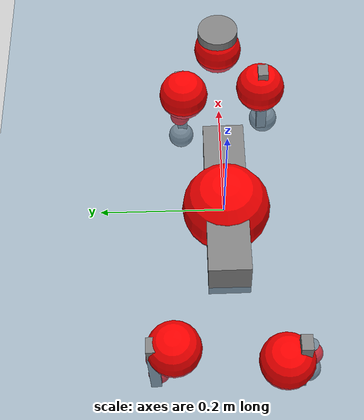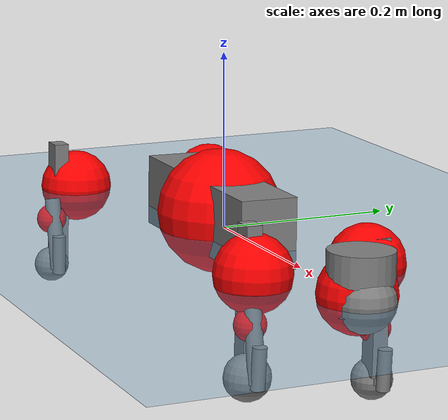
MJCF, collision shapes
<mujoco model="go2">
  <compiler angle="radian" assetdir="assets" balanceinertia="true" inertiafromgeom="false"/>

  <option timestep="0.005" density="1.2" viscosity="2e-05"/>

  <size nkey="1"/>

  <visual>
    <quality shadowsize="8192"/>
    <map shadowclip="0.5"/>
  </visual>

  <default>
    <default class="/">
      <geom contype="0" conaffinity="0" group="1" solref="-1000 -80"/>
      <site size="0.01 0.005 0.005" group="5"/>
      <general forcelimited="true" biastype="affine" gainprm="20" biasprm="0 -20 -0.5"/>
      <default class="go2">
        <joint armature="0.01" damping="0.01" frictionloss="0.2"/>
        <geom condim="1" margin="0.001"/>
        <default class="visual">
          <geom type="mesh" group="2"/>
        </default>
        <default class="collision">
          <geom group="3"/>
          <default class="foot">
            <geom size="0.022 0 0" condim="6" priority="1" friction="0.8 0.02 0.01" solimp="0.015 1 0.022"/>
          </default>
        </default>
        <default class="reward_collision_sphere">
          <geom group="5" rgba="1 0 0 1"/>
        </default>
      </default>
    </default>
  </default>

  <asset>
    <texture type="skybox" colorspace="auto" name="//unnamed_texture_0" builtin="gradient" rgb1="0.95 0.95 0.95" rgb2="0.95 0.95 0.95" width="100" height="600"/>
    <texture type="2d" colorspace="auto" name="texplane" builtin="checker" rgb1="0.345 0.575 0.748" rgb2="0.345 0.575 0.748" markrgb="1 1 1" width="512" height="512"/>
    <material name="MatPlane" class="/" texture="texplane" texuniform="true" texrepeat="2 2" specular="0.9"/>
    <material name="metal" class="/" rgba="0.9 0.95 0.95 1"/>
    <material name="black" class="/" rgba="0 0 0 1"/>
    <material name="white" class="/"/>
    <material name="gray" class="/" rgba="0.671705 0.692426 0.77427 1"/>
    <mesh name="base_0" class="/" file="base_0.obj"/>
    <mesh name="base_1" class="/" file="base_1.obj"/>
    <mesh name="base_2" class="/" file="base_2.obj"/>
    <mesh name="base_3" class="/" file="base_3.obj"/>
    <mesh name="base_4" class="/" file="base_4.obj"/>
    <mesh name="hip_0" class="/" file="hip_0.obj"/>
    <mesh name="hip_1" class="/" file="hip_1.obj"/>
    <mesh name="thigh_0" class="/" file="thigh_0.obj"/>
    <mesh name="thigh_1" class="/" file="thigh_1.obj"/>
    <mesh name="thigh_mirror_0" class="/" file="thigh_mirror_0.obj"/>
    <mesh name="thigh_mirror_1" class="/" file="thigh_mirror_1.obj"/>
    <mesh name="calf_0" class="/" file="calf_0.obj"/>
    <mesh name="calf_1" class="/" file="calf_1.obj"/>
    <mesh name="calf_mirror_0" class="/" file="calf_mirror_0.obj"/>
    <mesh name="calf_mirror_1" class="/" file="calf_mirror_1.obj"/>
    <mesh name="foot" class="/" file="foot.obj"/>
  </asset>

  <worldbody>
    <geom name="floor" class="/" size="100 100 0.125" type="plane" group="0" material="MatPlane"/>
    <light name="toplight_shadow" class="/" pos="0 0 5" dir="0.0990148 0.0990148 -0.990148" type="directional" ambient="0.04 0.04 0.04" diffuse="0.55 0.55 0.55" specular="0.12 0.12 0.12"/>
    <light name="toplight_fill" class="/" pos="0 0 5" dir="0.0990148 0.0990148 -0.990148" type="directional" castshadow="false" ambient="0.04 0.04 0.04" diffuse="0.3 0.3 0.3" specular="0.08 0.08 0.08"/>
    <body name="trunk" childclass="go2" pos="-0.0062276 -0.00278805 0.0186425" quat="0.999961 -0.00876877 -0.000660084 -0.000547395">
      <inertial pos="0.0203429 -0.0157802 0.00373934" quat="-0.0172934 0.749209 -0.065855 0.658825" mass="2.177" diaginertia="0.235007 0.00818289 2.31277e-05"/>
      <joint name="//unnamed_joint_0" type="free" armature="0" damping="0" frictionloss="0"/>
      <geom name="//unnamed_geom_1" class="visual" material="black" mesh="base_0"/>
      <geom name="//unnamed_geom_2" class="visual" material="black" mesh="base_1"/>
      <geom name="//unnamed_geom_3" class="visual" material="black" mesh="base_2"/>
      <geom name="//unnamed_geom_4" class="visual" material="white" mesh="base_3"/>
      <geom name="//unnamed_geom_5" class="visual" material="gray" mesh="base_4"/>
      <geom name="trunk_1" class="collision" size="0.132695 0.0329799 0.0402107" type="box"/>
      <geom name="trunk_2" class="collision" size="0.0352726 0.0317453" pos="0.347455 0 0.00265558" type="cylinder"/>
      <geom name="trunk_3" class="collision" size="0.0331562" pos="0.357208 0 -0.0159335"/>
      <geom name="//unnamed_geom_9" class="reward_collision_sphere" size="0.0705452"/>
      <geom name="//unnamed_geom_10" class="reward_collision_sphere" size="0.0423271" pos="0.341359 0 -0.0119501"/>
      <site name="imu" pos="-0.0679847 -0.0634575 0.087258" size="0.00705452"/>
      <camera name="track" pos="0 -1.26332 0" quat="0.707107 0.707107 0 0" mode="trackcom"/>
      <camera name="ego_camera" pos="0.380371 0 0.0119501" quat="-0.5 -0.5 0.5 0.5"/>
      <body name="FL_hip" pos="0.238271 0.0197267 -0.010333" quat="0.999997 -0.00101068 0.00204967 -0.000680921">
        <inertial pos="0.0105028 -0.0011595 0.0181557" quat="0.421598 0.498665 0.523174 0.54761" mass="0.281021" diaginertia="0.00225135 7.69966e-05 7.42459e-07"/>
        <joint name="FL_hip_joint" pos="0 0 0" axis="0.996636 -0.076696 0.0288968" stiffness="0.07259" range="-0.984193 0.804988" armature="0.00689058" damping="0.0815094" frictionloss="0.0562411"/>
        <geom name="//unnamed_geom_11" class="visual" material="metal" mesh="hip_0"/>
        <geom name="//unnamed_geom_12" class="visual" material="gray" mesh="hip_1"/>
        <geom name="//unnamed_geom_13" class="collision" size="0.0324508 0.014109" pos="0 0.0505327 0" quat="0.707107 0.707107 0 0" type="cylinder"/>
        <geom name="//unnamed_geom_14" class="reward_collision_sphere" size="0.0423271" pos="0 0.0442161 0"/>
        <body name="FL_thigh" pos="0.0155247 0.0493582 -0.0150178" quat="0.999999 -0.00115268 -0.00066904 -0.000443161">
          <inertial pos="-0.00456375 -0.0170768 -0.0038752" quat="0.811355 0.0580972 -0.00555251 0.581633" mass="0.439047" diaginertia="0.0174966 0.000703611 1.67277e-06"/>
          <joint name="FL_thigh_joint" pos="0 0 0" axis="-0.00617648 0.999925 -0.0106135" stiffness="0.0128826" range="-1.32429 3.48178" armature="0.0114326" damping="0" frictionloss="0.144528"/>
          <geom name="//unnamed_geom_15" class="visual" material="metal" mesh="thigh_0"/>
          <geom name="//unnamed_geom_16" class="visual" material="gray" mesh="thigh_1"/>
          <geom name="//unnamed_geom_17" class="collision" size="0.0751306 0.00864178 0.0119927" pos="0 0 -0.0282819" quat="0.707107 0 0.707107 0" type="box"/>
          <body name="FL_calf" pos="-0.00846677 0.00344492 -0.0544002" quat="1 9.21079e-05 -0.000191981 -6.62767e-05">
            <inertial pos="0.0274795 0.0175648 -0.0391526" quat="0.712768 -0.0125744 0.0132218 0.701163" mass="0.0858007" diaginertia="0.00514445 0.000143996 7.65656e-08"/>
            <joint name="FL_calf_joint" pos="0 0 0" axis="0.00911802 0.999877 -0.0127398" range="-2.33174 -1.09141" armature="0.010766" damping="0.0453043" frictionloss="0.00676753"/>
            <geom name="//unnamed_geom_18" class="visual" material="gray" mesh="calf_0"/>
            <geom name="//unnamed_geom_19" class="visual" material="black" mesh="calf_1"/>
            <geom name="FL_calf0" class="collision" size="0.00846542 0.0423271" pos="0.00975311 0 -0.0159335" quat="0.994493 0 -0.104807 0" type="cylinder"/>
            <geom name="//unnamed_geom_21" class="collision" size="0.00775997 0.0229272" pos="0.0243828 0 -0.0393025" quat="0.999688 0 0.0249974 0" type="cylinder"/>
            <geom name="//unnamed_geom_22" class="visual" pos="0 0 -0.0565638" quat="1 0 0 0" material="black" mesh="foot"/>
            <geom name="FL_foot" class="foot" size="0.0227911" pos="-0.00243828 0 -0.0565638"/>
            <geom name="//unnamed_geom_24" class="reward_collision_sphere" size="0.0176363"/>
            <geom name="//unnamed_geom_25" class="reward_collision_sphere" size="0.0176363" pos="-0.00243828 0 -0.0565638"/>
            <site name="FL_foot" class="foot" pos="-0.00243828 0 -0.0565638" size="0.00705452"/>
          </body>
        </body>
      </body>
      <body name="FR_hip" pos="0.24817 -0.0269531 -0.00846315" quat="0.999955 -0.00647873 -0.00439145 -0.00543553">
        <inertial pos="0.0037258 -0.00132851 0.0011446" quat="0.501343 0.446192 0.477571 0.567004" mass="0.202765" diaginertia="0.00241767 6.99595e-05 6.49347e-07"/>
        <joint name="FR_hip_joint" pos="0 0 0" axis="0.998129 -0.0294382 0.0535816" stiffness="0.0797648" range="-0.676785 1.28793" armature="0.00451509" damping="0.0754604" frictionloss="0.0460943"/>
        <geom name="//unnamed_geom_26" class="visual" pos="0 3.18932e-09 1.36797e-07" quat="4.63268e-05 1 0 0" material="metal" mesh="hip_0"/>
        <geom name="//unnamed_geom_27" class="visual" pos="0 5.17027e-09 -3.3835e-07" quat="4.63268e-05 1 0 0" material="gray" mesh="hip_1"/>
        <geom name="//unnamed_geom_28" class="collision" size="0.0324508 0.014109" pos="0 -0.0505327 0" quat="0.707107 0.707107 0 0" type="cylinder"/>
        <geom name="//unnamed_geom_29" class="reward_collision_sphere" size="0.0423271" pos="0 -0.0442161 0"/>
        <body name="FR_thigh" pos="-0.00348415 -0.0475986 0.00506026" quat="0.999985 0.00184062 0.00517407 0.000492958">
          <inertial pos="0.00687185 0.0106722 0.000695609" quat="0.545137 0.0172045 0.0634977 0.835762" mass="0.335627" diaginertia="0.0154859 0.00071734 1.02412e-06"/>
          <joint name="FR_thigh_joint" pos="0 0 0" axis="-0.00395372 -0.999986 0.0033844" range="-3.50569 1.82163" armature="0.0114784" damping="0.0995448" frictionloss="0.249285"/>
          <geom name="//unnamed_geom_30" class="visual" material="metal" mesh="thigh_mirror_0"/>
          <geom name="//unnamed_geom_31" class="visual" material="gray" mesh="thigh_mirror_1"/>
          <geom name="//unnamed_geom_32" class="collision" size="0.0751306 0.00864178 0.0119927" pos="0 0 -0.0282819" quat="0.707107 0 0.707107 0" type="box"/>
          <body name="FR_calf" pos="0.0183631 -0.00522382 -0.0544593" quat="0.999993 -0.00218441 0.00240962 0.00200904">
            <inertial pos="0.0161214 0.0176754 -0.0529571" quat="0.697 0.0919829 0.00494091 0.71113" mass="0.111967" diaginertia="0.00518706 0.000141917 9.96583e-08"/>
            <joint name="FR_calf_joint" pos="0 0 0" axis="0.00055799 -0.999989 -0.00465359" stiffness="0.0392309" range="0.920039 2.8468" armature="0.00884541" damping="0.0738699" frictionloss="0.222708"/>
            <geom name="//unnamed_geom_33" class="visual" material="gray" mesh="calf_mirror_0"/>
            <geom name="//unnamed_geom_34" class="visual" material="black" mesh="calf_mirror_1"/>
            <geom name="FR_calf0" class="collision" size="0.00917087 0.0423271" pos="0.0121914 0 -0.0159335" quat="0.995004 0 -0.0998334 0" type="cylinder"/>
            <geom name="//unnamed_geom_36" class="collision" size="0.00775997 0.0229272" pos="0.0243828 0 -0.0393025" quat="0.999688 0 0.0249974 0" type="cylinder"/>
            <geom name="//unnamed_geom_37" class="visual" pos="0 0 -0.0565638" quat="1 0 0 0" material="black" mesh="foot"/>
            <geom name="FR_foot" class="foot" size="0.0254305" pos="-0.00243828 0 -0.0565638"/>
            <geom name="//unnamed_geom_39" class="reward_collision_sphere" size="0.0176363"/>
            <geom name="//unnamed_geom_40" class="reward_collision_sphere" size="0.0176363" pos="-0.00243828 0 -0.0565638"/>
            <site name="FR_foot" class="foot" pos="-0.00243828 0 -0.0565638" size="0.00705452"/>
          </body>
        </body>
      </body>
      <body name="RL_hip" pos="-0.232024 0.0433038 -0.0141811" quat="0.999989 -0.00437297 -0.00110217 -0.000923147">
        <inertial pos="0.015744 0.0183224 0.0186892" quat="0.492082 0.469221 0.537508 0.498771" mass="0.295905" diaginertia="0.0031526 6.03537e-05 8.7215e-07"/>
        <joint name="RL_hip_joint" pos="0 0 0" axis="-0.996622 0.0483889 -0.0663495" range="-0.716247 0.699416" armature="0.0014907" damping="0" frictionloss="0.157138"/>
        <geom name="//unnamed_geom_41" class="visual" pos="-8.3072e-09 0 -1.6284e-06" quat="4.63268e-05 0 1 0" material="metal" mesh="hip_0"/>
        <geom name="//unnamed_geom_42" class="visual" pos="-1.3467e-08 0 -1.44416e-06" quat="4.63268e-05 0 1 0" material="gray" mesh="hip_1"/>
        <geom name="//unnamed_geom_43" class="collision" size="0.0324508 0.014109" pos="0 0.0505327 0" quat="0.707107 0.707107 0 0" type="cylinder"/>
        <geom name="//unnamed_geom_44" class="reward_collision_sphere" size="0.0423271" pos="0 0.0442161 0"/>
        <body name="RL_thigh" pos="-0.00373959 0.0767218 -0.0182773" quat="0.999974 0.00466723 -0.0049386 0.00256296">
          <inertial pos="-0.0239713 0.000459614 0.0105641" quat="0.828614 0.0839455 -0.0217734 0.553063" mass="0.321416" diaginertia="0.00938236 0.000405191 7.19546e-07"/>
          <joint name="RL_thigh_joint" pos="0 0 0" axis="0.00791091 0.995358 -0.0959137" range="-0.255609 4.44335" armature="0.00460244" damping="0.103577" frictionloss="0.0627805"/>
          <geom name="//unnamed_geom_45" class="visual" material="metal" mesh="thigh_0"/>
          <geom name="//unnamed_geom_46" class="visual" material="gray" mesh="thigh_1"/>
          <geom name="//unnamed_geom_47" class="collision" size="0.0751306 0.00864178 0.0119927" pos="0 0 -0.0282819" quat="0.707107 0 0.707107 0" type="box"/>
          <body name="RL_calf" pos="0.0129083 -0.00338464 -0.0433716" quat="0.999971 -0.00755128 -0.000148959 -0.00105494">
            <inertial pos="0.025964 -0.0144424 -0.0186492" quat="0.670357 0.0680264 -0.0128271 0.738803" mass="0.0940661" diaginertia="0.00461281 0.000199173 7.15804e-08"/>
            <joint name="RL_calf_joint" pos="0 0 0" axis="-0.0139011 0.999898 -0.00326188" stiffness="0.0349597" range="-2.86226 -0.442539" armature="0.00146339" damping="0.0963857" frictionloss="0.157379"/>
            <geom name="//unnamed_geom_48" class="visual" material="gray" mesh="calf_0"/>
            <geom name="//unnamed_geom_49" class="visual" material="black" mesh="calf_1"/>
            <geom name="RL_calf0" class="collision" size="0.00917087 0.0423271" pos="0.0121914 0 -0.0159335" quat="0.995004 0 -0.0998334 0" type="cylinder"/>
            <geom name="//unnamed_geom_51" class="collision" size="0.00775997 0.0229272" pos="0.0243828 0 -0.0393025" quat="0.999688 0 0.0249974 0" type="cylinder"/>
            <geom name="//unnamed_geom_52" class="visual" pos="0 0 -0.0565638" quat="1 0 0 0" material="black" mesh="foot"/>
            <geom name="RL_foot" class="foot" size="0.00963354" pos="-0.00243828 0 -0.0565638"/>
            <geom name="//unnamed_geom_54" class="reward_collision_sphere" size="0.0176363"/>
            <geom name="//unnamed_geom_55" class="reward_collision_sphere" size="0.0176363" pos="-0.00243828 0 -0.0565638"/>
            <site name="RL_foot" class="foot" pos="-0.00243828 0 -0.0565638" size="0.00705452"/>
          </body>
        </body>
      </body>
      <body name="RR_hip" pos="-0.255383 -0.0347703 -0.0168548" quat="1 0.000130151 7.87707e-05 0.000150691">
        <inertial pos="0.0221808 0.0116695 -0.000828367" quat="0.480348 0.567197 0.486045 0.459689" mass="0.227895" diaginertia="0.0014167 4.37625e-05 4.12783e-07"/>
        <joint name="RR_hip_joint" pos="0 0 0" axis="-0.995131 -0.0591455 0.0788383" range="-0.822248 1.03563" armature="0.00685631" damping="0.00647704" frictionloss="0.00342932"/>
        <geom name="//unnamed_geom_56" class="visual" pos="8.28687e-09 3.18932e-09 -1.7652e-06" quat="2.14617e-09 4.63268e-05 4.63268e-05 -1" material="metal" mesh="hip_0"/>
        <geom name="//unnamed_geom_57" class="visual" pos="1.35173e-08 5.17027e-09 -1.10581e-06" quat="2.14617e-09 4.63268e-05 4.63268e-05 -1" material="gray" mesh="hip_1"/>
        <geom name="//unnamed_geom_58" class="collision" size="0.0324508 0.014109" pos="0 -0.0505327 0" quat="0.707107 0.707107 0 0" type="cylinder"/>
        <geom name="//unnamed_geom_59" class="reward_collision_sphere" size="0.0423271" pos="0 -0.0442161 0"/>
        <body name="RR_thigh" pos="0.00610458 -0.0693694 0.00810608" quat="0.999995 -0.00293456 -0.00101014 -0.000255869">
          <inertial pos="-0.0152647 0.0261612 0.00825747" quat="0.550487 -0.0672291 0.0354808 0.831375" mass="0.559281" diaginertia="0.0142083 0.000681156 1.16363e-06"/>
          <joint name="RR_thigh_joint" pos="0 0 0" axis="-0.0544561 -0.998514 0.00225607" range="-4.5998 0.825623" armature="0.00669819" damping="0.0506936" frictionloss="0.201197"/>
          <geom name="//unnamed_geom_60" class="visual" material="metal" mesh="thigh_mirror_0"/>
          <geom name="//unnamed_geom_61" class="visual" material="gray" mesh="thigh_mirror_1"/>
          <geom name="//unnamed_geom_62" class="collision" size="0.0751306 0.00864178 0.0119927" pos="0 0 -0.0282819" quat="0.707107 0 0.707107 0" type="box"/>
          <body name="RR_calf" pos="0.0177521 -0.0149273 -0.0419726" quat="0.999951 0.00904717 -0.00361464 0.00174848">
            <inertial pos="-0.00167915 0.00195034 -0.0398442" quat="0.718464 -0.0758779 -0.0405202 0.690225" mass="0.0775777" diaginertia="0.00365144 0.000104779 7.17965e-08"/>
            <joint name="RR_calf_joint" pos="0 0 0" axis="-0.061096 -0.995429 0.0734093" stiffness="0.0887356" range="0.507212 2.88944" armature="0.00604285" damping="0.09327" frictionloss="0.202246"/>
            <geom name="//unnamed_geom_63" class="visual" material="gray" mesh="calf_mirror_0"/>
            <geom name="//unnamed_geom_64" class="visual" material="black" mesh="calf_mirror_1"/>
            <geom name="RR_calf0" class="collision" size="0.00917087 0.0423271" pos="0.0121914 0 -0.0159335" quat="0.995004 0 -0.0998334 0" type="cylinder"/>
            <geom name="//unnamed_geom_66" class="collision" size="0.00775997 0.0229272" pos="0.0243828 0 -0.0393025" quat="0.999688 0 0.0249974 0" type="cylinder"/>
            <geom name="//unnamed_geom_67" class="visual" pos="0 0 -0.0565638" quat="1 0 0 0" material="black" mesh="foot"/>
            <geom name="RR_foot" class="foot" size="0.0205162" pos="-0.00243828 0 -0.0565638"/>
            <geom name="//unnamed_geom_69" class="reward_collision_sphere" size="0.0176363"/>
            <geom name="//unnamed_geom_70" class="reward_collision_sphere" size="0.0176363" pos="-0.00243828 0 -0.0565638"/>
            <site name="RR_foot" class="foot" pos="-0.00243828 0 -0.0565638" size="0.00705452"/>
          </body>
        </body>
      </body>
    </body>
  </worldbody>

  <contact>
    <pair class="/" geom1="floor" geom2="FL_foot" name="//unnamed_contact_0"/>
    <pair class="/" geom1="floor" geom2="FR_foot" name="//unnamed_contact_1"/>
    <pair class="/" geom1="floor" geom2="RL_foot" name="//unnamed_contact_2"/>
    <pair class="/" geom1="floor" geom2="RR_foot" name="//unnamed_contact_3"/>
  </contact>

  <actuator>
    <general name="FL_hip" class="/" joint="FL_hip_joint" forcerange="-18.973 18.973" gainprm="11.4649" biasprm="0 -11.4649 -0.428886"/>
    <general name="FL_thigh" class="/" joint="FL_thigh_joint" forcerange="-12.197 12.197" gainprm="11.4649" biasprm="0 -11.4649 -0.428886"/>
    <general name="FL_calf" class="/" joint="FL_calf_joint" forcerange="-17.0262 17.0262" gainprm="11.4649" biasprm="0 -11.4649 -0.428886"/>
    <general name="FR_hip" class="/" joint="FR_hip_joint" forcerange="-21.046 21.046" gainprm="11.4649" biasprm="0 -11.4649 -0.428886"/>
    <general name="FR_thigh" class="/" joint="FR_thigh_joint" forcerange="-9.07286 9.07286" gainprm="11.4649" biasprm="0 -11.4649 -0.428886"/>
    <general name="FR_calf" class="/" joint="FR_calf_joint" forcerange="-35.7834 35.7834" gainprm="11.4649" biasprm="0 -11.4649 -0.428886"/>
    <general name="RL_hip" class="/" joint="RL_hip_joint" forcerange="-19.2832 19.2832" gainprm="11.4649" biasprm="0 -11.4649 -0.428886"/>
    <general name="RL_thigh" class="/" joint="RL_thigh_joint" forcerange="-28.3162 28.3162" gainprm="11.4649" biasprm="0 -11.4649 -0.428886"/>
    <general name="RL_calf" class="/" joint="RL_calf_joint" forcerange="-11.4862 11.4862" gainprm="11.4649" biasprm="0 -11.4649 -0.428886"/>
    <general name="RR_hip" class="/" joint="RR_hip_joint" forcerange="-16.7185 16.7185" gainprm="11.4649" biasprm="0 -11.4649 -0.428886"/>
    <general name="RR_thigh" class="/" joint="RR_thigh_joint" forcerange="-22.8409 22.8409" gainprm="11.4649" biasprm="0 -11.4649 -0.428886"/>
    <general name="RR_calf" class="/" joint="RR_calf_joint" forcerange="-16.532 16.532" gainprm="11.4649" biasprm="0 -11.4649 -0.428886"/>
  </actuator>

  <sensor>
    <gyro site="imu" name="imu_angular_velocity"/>
    <velocimeter site="imu" name="imu_linear_velocity"/>
    <framelinvel objtype="site" objname="FL_foot" name="FL_foot_global_linear_velocity"/>
    <framelinvel objtype="site" objname="FR_foot" name="FR_foot_global_linear_velocity"/>
    <framelinvel objtype="site" objname="RL_foot" name="RL_foot_global_linear_velocity"/>
    <framelinvel objtype="site" objname="RR_foot" name="RR_foot_global_linear_velocity"/>
  </sensor>

  <keyframe>
    <key name="home" qpos="0 0 0.325 1 0 0 0 0.1 0.8 -1.5 -0.1 -0.8 1.5 -0.1 0.8 -1.5 0.1 -0.8 1.5"/>
  </keyframe>
</mujoco>
